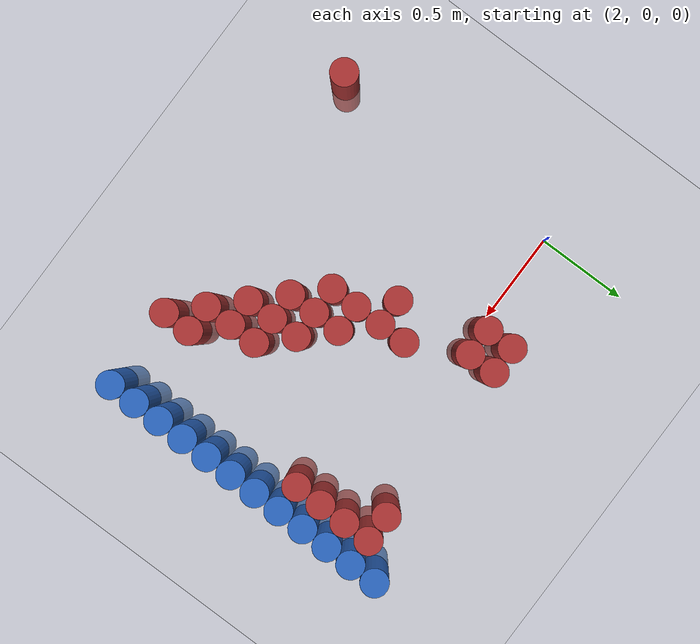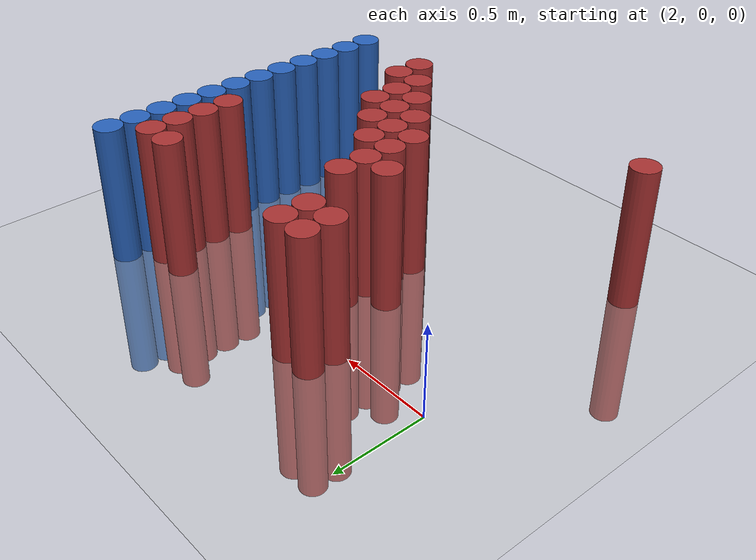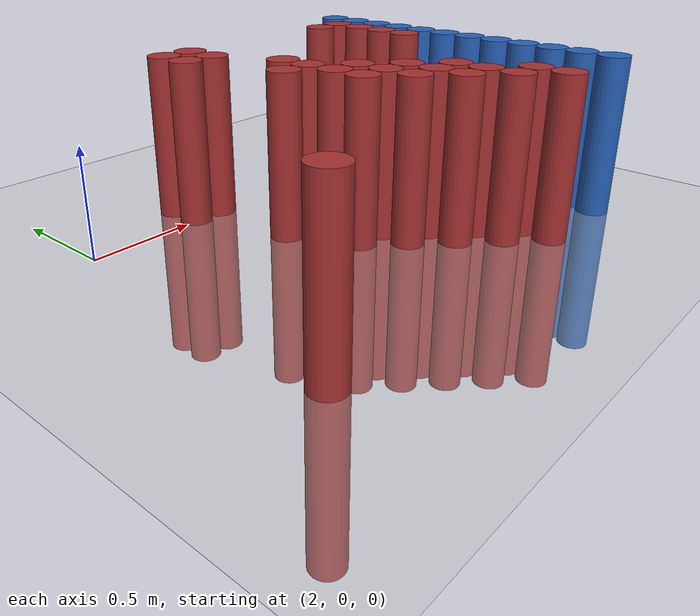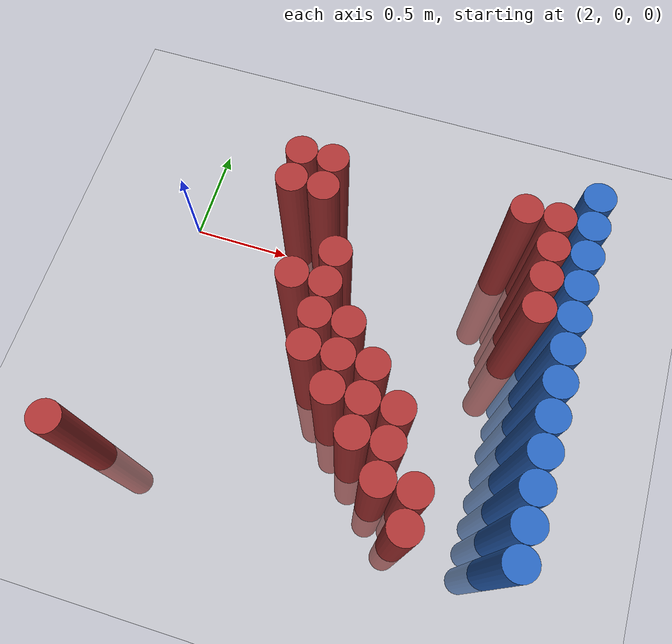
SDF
<sdf version="1.6">
 <world name="default">
  <model name="ground_plane">
   <static>1</static>
   <link name="link">
    <collision name="collision">
     <geometry><plane><normal>0 0 1</normal><size>100 100</size></plane></geometry>
     <surface><friction><ode><mu>100</mu><mu2>50</mu2></ode></friction></surface>
    </collision>
    <visual name="visual">
     <cast_shadows>0</cast_shadows>
     <geometry><plane><normal>0 0 1</normal><size>100 100</size></plane></geometry>
     <material>
      <script><uri>file://media/materials/scripts/gazebo.material</uri><name>Gazebo/Grey</name></script>
     </material>
    </visual>
   </link>
  </model>
  <model name="unit_cylinder_96">
   <static>1</static>
   <pose>3.925000 -1.325000 0.000000 0.000000 0.000000 0.000000</pose>
   <link name="link">
    <inertial>
     <mass>1</mass>
     <inertia><ixx>0.145833</ixx><ixy>0</ixy><ixz>0</ixz><iyy>0.145833</iyy><iyz>0</iyz><izz>0.125</izz></inertia>
    </inertial>
    <collision name="collision">
     <geometry><cylinder><radius>0.075000</radius><length>1.5</length></cylinder></geometry>
    </collision>
    <visual name="visual">
     <geometry><cylinder><radius>0.075000</radius><length>1.5</length></cylinder></geometry>
     <material>
      <ambient>0.152000 0.379000 0.720000 1</ambient>
      <diffuse>0.152000 0.379000 0.720000 1</diffuse>
     </material>
     <material>
      <script><name>Gazebo/Grey</name><uri>file://media/materials/scripts/gazebo.material</uri></script>
     </material>
    </visual>
   </link>
  </model>
  <model name="unit_cylinder_98">
   <static>1</static>
   <pose>3.925000 -1.175000 0.000000 0.000000 0.000000 0.000000</pose>
   <link name="link">
    <inertial>
     <mass>1</mass>
     <inertia><ixx>0.145833</ixx><ixy>0</ixy><ixz>0</ixz><iyy>0.145833</iyy><iyz>0</iyz><izz>0.125</izz></inertia>
    </inertial>
    <collision name="collision">
     <geometry><cylinder><radius>0.075000</radius><length>1.5</length></cylinder></geometry>
    </collision>
    <visual name="visual">
     <geometry><cylinder><radius>0.075000</radius><length>1.5</length></cylinder></geometry>
     <material>
      <ambient>0.152000 0.379000 0.720000 1</ambient>
      <diffuse>0.152000 0.379000 0.720000 1</diffuse>
     </material>
     <material>
      <script><name>Gazebo/Grey</name><uri>file://media/materials/scripts/gazebo.material</uri></script>
     </material>
    </visual>
   </link>
  </model>
  <model name="unit_cylinder_100">
   <static>1</static>
   <pose>3.925000 -1.025000 0.000000 0.000000 0.000000 0.000000</pose>
   <link name="link">
    <inertial>
     <mass>1</mass>
     <inertia><ixx>0.145833</ixx><ixy>0</ixy><ixz>0</ixz><iyy>0.145833</iyy><iyz>0</iyz><izz>0.125</izz></inertia>
    </inertial>
    <collision name="collision">
     <geometry><cylinder><radius>0.075000</radius><length>1.5</length></cylinder></geometry>
    </collision>
    <visual name="visual">
     <geometry><cylinder><radius>0.075000</radius><length>1.5</length></cylinder></geometry>
     <material>
      <ambient>0.152000 0.379000 0.720000 1</ambient>
      <diffuse>0.152000 0.379000 0.720000 1</diffuse>
     </material>
     <material>
      <script><name>Gazebo/Grey</name><uri>file://media/materials/scripts/gazebo.material</uri></script>
     </material>
    </visual>
   </link>
  </model>
  <model name="unit_cylinder_102">
   <static>1</static>
   <pose>3.925000 -0.875000 0.000000 0.000000 0.000000 0.000000</pose>
   <link name="link">
    <inertial>
     <mass>1</mass>
     <inertia><ixx>0.145833</ixx><ixy>0</ixy><ixz>0</ixz><iyy>0.145833</iyy><iyz>0</iyz><izz>0.125</izz></inertia>
    </inertial>
    <collision name="collision">
     <geometry><cylinder><radius>0.075000</radius><length>1.5</length></cylinder></geometry>
    </collision>
    <visual name="visual">
     <geometry><cylinder><radius>0.075000</radius><length>1.5</length></cylinder></geometry>
     <material>
      <ambient>0.152000 0.379000 0.720000 1</ambient>
      <diffuse>0.152000 0.379000 0.720000 1</diffuse>
     </material>
     <material>
      <script><name>Gazebo/Grey</name><uri>file://media/materials/scripts/gazebo.material</uri></script>
     </material>
    </visual>
   </link>
  </model>
  <model name="unit_cylinder_104">
   <static>1</static>
   <pose>3.925000 -0.725000 0.000000 0.000000 0.000000 0.000000</pose>
   <link name="link">
    <inertial>
     <mass>1</mass>
     <inertia><ixx>0.145833</ixx><ixy>0</ixy><ixz>0</ixz><iyy>0.145833</iyy><iyz>0</iyz><izz>0.125</izz></inertia>
    </inertial>
    <collision name="collision">
     <geometry><cylinder><radius>0.075000</radius><length>1.5</length></cylinder></geometry>
    </collision>
    <visual name="visual">
     <geometry><cylinder><radius>0.075000</radius><length>1.5</length></cylinder></geometry>
     <material>
      <ambient>0.152000 0.379000 0.720000 1</ambient>
      <diffuse>0.152000 0.379000 0.720000 1</diffuse>
     </material>
     <material>
      <script><name>Gazebo/Grey</name><uri>file://media/materials/scripts/gazebo.material</uri></script>
     </material>
    </visual>
   </link>
  </model>
  <model name="unit_cylinder_106">
   <static>1</static>
   <pose>3.925000 -0.575000 0.000000 0.000000 0.000000 0.000000</pose>
   <link name="link">
    <inertial>
     <mass>1</mass>
     <inertia><ixx>0.145833</ixx><ixy>0</ixy><ixz>0</ixz><iyy>0.145833</iyy><iyz>0</iyz><izz>0.125</izz></inertia>
    </inertial>
    <collision name="collision">
     <geometry><cylinder><radius>0.075000</radius><length>1.5</length></cylinder></geometry>
    </collision>
    <visual name="visual">
     <geometry><cylinder><radius>0.075000</radius><length>1.5</length></cylinder></geometry>
     <material>
      <ambient>0.152000 0.379000 0.720000 1</ambient>
      <diffuse>0.152000 0.379000 0.720000 1</diffuse>
     </material>
     <material>
      <script><name>Gazebo/Grey</name><uri>file://media/materials/scripts/gazebo.material</uri></script>
     </material>
    </visual>
   </link>
  </model>
  <model name="unit_cylinder_108">
   <static>1</static>
   <pose>3.925000 -0.425000 0.000000 0.000000 0.000000 0.000000</pose>
   <link name="link">
    <inertial>
     <mass>1</mass>
     <inertia><ixx>0.145833</ixx><ixy>0</ixy><ixz>0</ixz><iyy>0.145833</iyy><iyz>0</iyz><izz>0.125</izz></inertia>
    </inertial>
    <collision name="collision">
     <geometry><cylinder><radius>0.075000</radius><length>1.5</length></cylinder></geometry>
    </collision>
    <visual name="visual">
     <geometry><cylinder><radius>0.075000</radius><length>1.5</length></cylinder></geometry>
     <material>
      <ambient>0.152000 0.379000 0.720000 1</ambient>
      <diffuse>0.152000 0.379000 0.720000 1</diffuse>
     </material>
     <material>
      <script><name>Gazebo/Grey</name><uri>file://media/materials/scripts/gazebo.material</uri></script>
     </material>
    </visual>
   </link>
  </model>
  <model name="unit_cylinder_110">
   <static>1</static>
   <pose>3.925000 -0.275000 0.000000 0.000000 0.000000 0.000000</pose>
   <link name="link">
    <inertial>
     <mass>1</mass>
     <inertia><ixx>0.145833</ixx><ixy>0</ixy><ixz>0</ixz><iyy>0.145833</iyy><iyz>0</iyz><izz>0.125</izz></inertia>
    </inertial>
    <collision name="collision">
     <geometry><cylinder><radius>0.075000</radius><length>1.5</length></cylinder></geometry>
    </collision>
    <visual name="visual">
     <geometry><cylinder><radius>0.075000</radius><length>1.5</length></cylinder></geometry>
     <material>
      <ambient>0.152000 0.379000 0.720000 1</ambient>
      <diffuse>0.152000 0.379000 0.720000 1</diffuse>
     </material>
     <material>
      <script><name>Gazebo/Grey</name><uri>file://media/materials/scripts/gazebo.material</uri></script>
     </material>
    </visual>
   </link>
  </model>
  <model name="unit_cylinder_112">
   <static>1</static>
   <pose>3.925000 -0.125000 0.000000 0.000000 0.000000 0.000000</pose>
   <link name="link">
    <inertial>
     <mass>1</mass>
     <inertia><ixx>0.145833</ixx><ixy>0</ixy><ixz>0</ixz><iyy>0.145833</iyy><iyz>0</iyz><izz>0.125</izz></inertia>
    </inertial>
    <collision name="collision">
     <geometry><cylinder><radius>0.075000</radius><length>1.5</length></cylinder></geometry>
    </collision>
    <visual name="visual">
     <geometry><cylinder><radius>0.075000</radius><length>1.5</length></cylinder></geometry>
     <material>
      <ambient>0.152000 0.379000 0.720000 1</ambient>
      <diffuse>0.152000 0.379000 0.720000 1</diffuse>
     </material>
     <material>
      <script><name>Gazebo/Grey</name><uri>file://media/materials/scripts/gazebo.material</uri></script>
     </material>
    </visual>
   </link>
  </model>
  <model name="unit_cylinder_114">
   <static>1</static>
   <pose>3.925000 0.025000 0.000000 0.000000 0.000000 0.000000</pose>
   <link name="link">
    <inertial>
     <mass>1</mass>
     <inertia><ixx>0.145833</ixx><ixy>0</ixy><ixz>0</ixz><iyy>0.145833</iyy><iyz>0</iyz><izz>0.125</izz></inertia>
    </inertial>
    <collision name="collision">
     <geometry><cylinder><radius>0.075000</radius><length>1.5</length></cylinder></geometry>
    </collision>
    <visual name="visual">
     <geometry><cylinder><radius>0.075000</radius><length>1.5</length></cylinder></geometry>
     <material>
      <ambient>0.152000 0.379000 0.720000 1</ambient>
      <diffuse>0.152000 0.379000 0.720000 1</diffuse>
     </material>
     <material>
      <script><name>Gazebo/Grey</name><uri>file://media/materials/scripts/gazebo.material</uri></script>
     </material>
    </visual>
   </link>
  </model>
  <model name="unit_cylinder_116">
   <static>1</static>
   <pose>3.925000 0.175000 0.000000 0.000000 0.000000 0.000000</pose>
   <link name="link">
    <inertial>
     <mass>1</mass>
     <inertia><ixx>0.145833</ixx><ixy>0</ixy><ixz>0</ixz><iyy>0.145833</iyy><iyz>0</iyz><izz>0.125</izz></inertia>
    </inertial>
    <collision name="collision">
     <geometry><cylinder><radius>0.075000</radius><length>1.5</length></cylinder></geometry>
    </collision>
    <visual name="visual">
     <geometry><cylinder><radius>0.075000</radius><length>1.5</length></cylinder></geometry>
     <material>
      <ambient>0.152000 0.379000 0.720000 1</ambient>
      <diffuse>0.152000 0.379000 0.720000 1</diffuse>
     </material>
     <material>
      <script><name>Gazebo/Grey</name><uri>file://media/materials/scripts/gazebo.material</uri></script>
     </material>
    </visual>
   </link>
  </model>
  <model name="unit_cylinder_118">
   <static>1</static>
   <pose>3.925000 0.325000 0.000000 0.000000 0.000000 0.000000</pose>
   <link name="link">
    <inertial>
     <mass>1</mass>
     <inertia><ixx>0.145833</ixx><ixy>0</ixy><ixz>0</ixz><iyy>0.145833</iyy><iyz>0</iyz><izz>0.125</izz></inertia>
    </inertial>
    <collision name="collision">
     <geometry><cylinder><radius>0.075000</radius><length>1.5</length></cylinder></geometry>
    </collision>
    <visual name="visual">
     <geometry><cylinder><radius>0.075000</radius><length>1.5</length></cylinder></geometry>
     <material>
      <ambient>0.152000 0.379000 0.720000 1</ambient>
      <diffuse>0.152000 0.379000 0.720000 1</diffuse>
     </material>
     <material>
      <script><name>Gazebo/Grey</name><uri>file://media/materials/scripts/gazebo.material</uri></script>
     </material>
    </visual>
   </link>
  </model>
  <model name="unit_cylinder_337">
   <static>1</static>
   <pose>1.975000 -1.325000 0.000000 0.000000 0.000000 0.000000</pose>
   <link name="link">
    <inertial>
     <mass>1</mass>
     <inertia><ixx>0.145833</ixx><ixy>0</ixy><ixz>0</ixz><iyy>0.145833</iyy><iyz>0</iyz><izz>0.125</izz></inertia>
    </inertial>
    <collision name="collision">
     <geometry><cylinder><radius>0.075000</radius><length>1.5</length></cylinder></geometry>
    </collision>
    <visual name="visual">
     <geometry><cylinder><radius>0.075000</radius><length>1.5</length></cylinder></geometry>
     <material>
      <ambient>0.648000 0.192000 0.192000 1</ambient>
      <diffuse>0.648000 0.192000 0.192000 1</diffuse>
     </material>
     <material>
      <script><name>Gazebo/Grey</name><uri>file://media/materials/scripts/gazebo.material</uri></script>
     </material>
    </visual>
   </link>
  </model>
  <model name="unit_cylinder_341">
   <static>1</static>
   <pose>2.575000 0.025000 0.000000 0.000000 0.000000 0.000000</pose>
   <link name="link">
    <inertial>
     <mass>1</mass>
     <inertia><ixx>0.145833</ixx><ixy>0</ixy><ixz>0</ixz><iyy>0.145833</iyy><iyz>0</iyz><izz>0.125</izz></inertia>
    </inertial>
    <collision name="collision">
     <geometry><cylinder><radius>0.075000</radius><length>1.5</length></cylinder></geometry>
    </collision>
    <visual name="visual">
     <geometry><cylinder><radius>0.075000</radius><length>1.5</length></cylinder></geometry>
     <material>
      <ambient>0.648000 0.192000 0.192000 1</ambient>
      <diffuse>0.648000 0.192000 0.192000 1</diffuse>
     </material>
     <material>
      <script><name>Gazebo/Grey</name><uri>file://media/materials/scripts/gazebo.material</uri></script>
     </material>
    </visual>
   </link>
  </model>
  <model name="unit_cylinder_342">
   <static>1</static>
   <pose>2.575000 0.175000 0.000000 0.000000 0.000000 0.000000</pose>
   <link name="link">
    <inertial>
     <mass>1</mass>
     <inertia><ixx>0.145833</ixx><ixy>0</ixy><ixz>0</ixz><iyy>0.145833</iyy><iyz>0</iyz><izz>0.125</izz></inertia>
    </inertial>
    <collision name="collision">
     <geometry><cylinder><radius>0.075000</radius><length>1.5</length></cylinder></geometry>
    </collision>
    <visual name="visual">
     <geometry><cylinder><radius>0.075000</radius><length>1.5</length></cylinder></geometry>
     <material>
      <ambient>0.648000 0.192000 0.192000 1</ambient>
      <diffuse>0.648000 0.192000 0.192000 1</diffuse>
     </material>
     <material>
      <script><name>Gazebo/Grey</name><uri>file://media/materials/scripts/gazebo.material</uri></script>
     </material>
    </visual>
   </link>
  </model>
  <model name="unit_cylinder_343">
   <static>1</static>
   <pose>2.725000 -0.425000 0.000000 0.000000 0.000000 0.000000</pose>
   <link name="link">
    <inertial>
     <mass>1</mass>
     <inertia><ixx>0.145833</ixx><ixy>0</ixy><ixz>0</ixz><iyy>0.145833</iyy><iyz>0</iyz><izz>0.125</izz></inertia>
    </inertial>
    <collision name="collision">
     <geometry><cylinder><radius>0.075000</radius><length>1.5</length></cylinder></geometry>
    </collision>
    <visual name="visual">
     <geometry><cylinder><radius>0.075000</radius><length>1.5</length></cylinder></geometry>
     <material>
      <ambient>0.648000 0.192000 0.192000 1</ambient>
      <diffuse>0.648000 0.192000 0.192000 1</diffuse>
     </material>
     <material>
      <script><name>Gazebo/Grey</name><uri>file://media/materials/scripts/gazebo.material</uri></script>
     </material>
    </visual>
   </link>
  </model>
  <model name="unit_cylinder_344">
   <static>1</static>
   <pose>2.725000 0.025000 0.000000 0.000000 0.000000 0.000000</pose>
   <link name="link">
    <inertial>
     <mass>1</mass>
     <inertia><ixx>0.145833</ixx><ixy>0</ixy><ixz>0</ixz><iyy>0.145833</iyy><iyz>0</iyz><izz>0.125</izz></inertia>
    </inertial>
    <collision name="collision">
     <geometry><cylinder><radius>0.075000</radius><length>1.5</length></cylinder></geometry>
    </collision>
    <visual name="visual">
     <geometry><cylinder><radius>0.075000</radius><length>1.5</length></cylinder></geometry>
     <material>
      <ambient>0.648000 0.192000 0.192000 1</ambient>
      <diffuse>0.648000 0.192000 0.192000 1</diffuse>
     </material>
     <material>
      <script><name>Gazebo/Grey</name><uri>file://media/materials/scripts/gazebo.material</uri></script>
     </material>
    </visual>
   </link>
  </model>
  <model name="unit_cylinder_345">
   <static>1</static>
   <pose>2.725000 0.175000 0.000000 0.000000 0.000000 0.000000</pose>
   <link name="link">
    <inertial>
     <mass>1</mass>
     <inertia><ixx>0.145833</ixx><ixy>0</ixy><ixz>0</ixz><iyy>0.145833</iyy><iyz>0</iyz><izz>0.125</izz></inertia>
    </inertial>
    <collision name="collision">
     <geometry><cylinder><radius>0.075000</radius><length>1.5</length></cylinder></geometry>
    </collision>
    <visual name="visual">
     <geometry><cylinder><radius>0.075000</radius><length>1.5</length></cylinder></geometry>
     <material>
      <ambient>0.648000 0.192000 0.192000 1</ambient>
      <diffuse>0.648000 0.192000 0.192000 1</diffuse>
     </material>
     <material>
      <script><name>Gazebo/Grey</name><uri>file://media/materials/scripts/gazebo.material</uri></script>
     </material>
    </visual>
   </link>
  </model>
  <model name="unit_cylinder_347">
   <static>1</static>
   <pose>2.875000 -0.725000 0.000000 0.000000 0.000000 0.000000</pose>
   <link name="link">
    <inertial>
     <mass>1</mass>
     <inertia><ixx>0.145833</ixx><ixy>0</ixy><ixz>0</ixz><iyy>0.145833</iyy><iyz>0</iyz><izz>0.125</izz></inertia>
    </inertial>
    <collision name="collision">
     <geometry><cylinder><radius>0.075000</radius><length>1.5</length></cylinder></geometry>
    </collision>
    <visual name="visual">
     <geometry><cylinder><radius>0.075000</radius><length>1.5</length></cylinder></geometry>
     <material>
      <ambient>0.648000 0.192000 0.192000 1</ambient>
      <diffuse>0.648000 0.192000 0.192000 1</diffuse>
     </material>
     <material>
      <script><name>Gazebo/Grey</name><uri>file://media/materials/scripts/gazebo.material</uri></script>
     </material>
    </visual>
   </link>
  </model>
  <model name="unit_cylinder_348">
   <static>1</static>
   <pose>2.875000 -0.575000 0.000000 0.000000 0.000000 0.000000</pose>
   <link name="link">
    <inertial>
     <mass>1</mass>
     <inertia><ixx>0.145833</ixx><ixy>0</ixy><ixz>0</ixz><iyy>0.145833</iyy><iyz>0</iyz><izz>0.125</izz></inertia>
    </inertial>
    <collision name="collision">
     <geometry><cylinder><radius>0.075000</radius><length>1.5</length></cylinder></geometry>
    </collision>
    <visual name="visual">
     <geometry><cylinder><radius>0.075000</radius><length>1.5</length></cylinder></geometry>
     <material>
      <ambient>0.648000 0.192000 0.192000 1</ambient>
      <diffuse>0.648000 0.192000 0.192000 1</diffuse>
     </material>
     <material>
      <script><name>Gazebo/Grey</name><uri>file://media/materials/scripts/gazebo.material</uri></script>
     </material>
    </visual>
   </link>
  </model>
  <model name="unit_cylinder_349">
   <static>1</static>
   <pose>2.875000 -0.425000 0.000000 0.000000 0.000000 0.000000</pose>
   <link name="link">
    <inertial>
     <mass>1</mass>
     <inertia><ixx>0.145833</ixx><ixy>0</ixy><ixz>0</ixz><iyy>0.145833</iyy><iyz>0</iyz><izz>0.125</izz></inertia>
    </inertial>
    <collision name="collision">
     <geometry><cylinder><radius>0.075000</radius><length>1.5</length></cylinder></geometry>
    </collision>
    <visual name="visual">
     <geometry><cylinder><radius>0.075000</radius><length>1.5</length></cylinder></geometry>
     <material>
      <ambient>0.648000 0.192000 0.192000 1</ambient>
      <diffuse>0.648000 0.192000 0.192000 1</diffuse>
     </material>
     <material>
      <script><name>Gazebo/Grey</name><uri>file://media/materials/scripts/gazebo.material</uri></script>
     </material>
    </visual>
   </link>
  </model>
  <model name="unit_cylinder_350">
   <static>1</static>
   <pose>2.875000 -0.275000 0.000000 0.000000 0.000000 0.000000</pose>
   <link name="link">
    <inertial>
     <mass>1</mass>
     <inertia><ixx>0.145833</ixx><ixy>0</ixy><ixz>0</ixz><iyy>0.145833</iyy><iyz>0</iyz><izz>0.125</izz></inertia>
    </inertial>
    <collision name="collision">
     <geometry><cylinder><radius>0.075000</radius><length>1.5</length></cylinder></geometry>
    </collision>
    <visual name="visual">
     <geometry><cylinder><radius>0.075000</radius><length>1.5</length></cylinder></geometry>
     <material>
      <ambient>0.648000 0.192000 0.192000 1</ambient>
      <diffuse>0.648000 0.192000 0.192000 1</diffuse>
     </material>
     <material>
      <script><name>Gazebo/Grey</name><uri>file://media/materials/scripts/gazebo.material</uri></script>
     </material>
    </visual>
   </link>
  </model>
  <model name="unit_cylinder_353">
   <static>1</static>
   <pose>3.025000 -0.875000 0.000000 0.000000 0.000000 0.000000</pose>
   <link name="link">
    <inertial>
     <mass>1</mass>
     <inertia><ixx>0.145833</ixx><ixy>0</ixy><ixz>0</ixz><iyy>0.145833</iyy><iyz>0</iyz><izz>0.125</izz></inertia>
    </inertial>
    <collision name="collision">
     <geometry><cylinder><radius>0.075000</radius><length>1.5</length></cylinder></geometry>
    </collision>
    <visual name="visual">
     <geometry><cylinder><radius>0.075000</radius><length>1.5</length></cylinder></geometry>
     <material>
      <ambient>0.648000 0.192000 0.192000 1</ambient>
      <diffuse>0.648000 0.192000 0.192000 1</diffuse>
     </material>
     <material>
      <script><name>Gazebo/Grey</name><uri>file://media/materials/scripts/gazebo.material</uri></script>
     </material>
    </visual>
   </link>
  </model>
  <model name="unit_cylinder_354">
   <static>1</static>
   <pose>3.025000 -0.725000 0.000000 0.000000 0.000000 0.000000</pose>
   <link name="link">
    <inertial>
     <mass>1</mass>
     <inertia><ixx>0.145833</ixx><ixy>0</ixy><ixz>0</ixz><iyy>0.145833</iyy><iyz>0</iyz><izz>0.125</izz></inertia>
    </inertial>
    <collision name="collision">
     <geometry><cylinder><radius>0.075000</radius><length>1.5</length></cylinder></geometry>
    </collision>
    <visual name="visual">
     <geometry><cylinder><radius>0.075000</radius><length>1.5</length></cylinder></geometry>
     <material>
      <ambient>0.648000 0.192000 0.192000 1</ambient>
      <diffuse>0.648000 0.192000 0.192000 1</diffuse>
     </material>
     <material>
      <script><name>Gazebo/Grey</name><uri>file://media/materials/scripts/gazebo.material</uri></script>
     </material>
    </visual>
   </link>
  </model>
  <model name="unit_cylinder_355">
   <static>1</static>
   <pose>3.025000 -0.575000 0.000000 0.000000 0.000000 0.000000</pose>
   <link name="link">
    <inertial>
     <mass>1</mass>
     <inertia><ixx>0.145833</ixx><ixy>0</ixy><ixz>0</ixz><iyy>0.145833</iyy><iyz>0</iyz><izz>0.125</izz></inertia>
    </inertial>
    <collision name="collision">
     <geometry><cylinder><radius>0.075000</radius><length>1.5</length></cylinder></geometry>
    </collision>
    <visual name="visual">
     <geometry><cylinder><radius>0.075000</radius><length>1.5</length></cylinder></geometry>
     <material>
      <ambient>0.648000 0.192000 0.192000 1</ambient>
      <diffuse>0.648000 0.192000 0.192000 1</diffuse>
     </material>
     <material>
      <script><name>Gazebo/Grey</name><uri>file://media/materials/scripts/gazebo.material</uri></script>
     </material>
    </visual>
   </link>
  </model>
  <model name="unit_cylinder_357">
   <static>1</static>
   <pose>3.175000 -1.025000 0.000000 0.000000 0.000000 0.000000</pose>
   <link name="link">
    <inertial>
     <mass>1</mass>
     <inertia><ixx>0.145833</ixx><ixy>0</ixy><ixz>0</ixz><iyy>0.145833</iyy><iyz>0</iyz><izz>0.125</izz></inertia>
    </inertial>
    <collision name="collision">
     <geometry><cylinder><radius>0.075000</radius><length>1.5</length></cylinder></geometry>
    </collision>
    <visual name="visual">
     <geometry><cylinder><radius>0.075000</radius><length>1.5</length></cylinder></geometry>
     <material>
      <ambient>0.648000 0.192000 0.192000 1</ambient>
      <diffuse>0.648000 0.192000 0.192000 1</diffuse>
     </material>
     <material>
      <script><name>Gazebo/Grey</name><uri>file://media/materials/scripts/gazebo.material</uri></script>
     </material>
    </visual>
   </link>
  </model>
  <model name="unit_cylinder_358">
   <static>1</static>
   <pose>3.175000 -0.875000 0.000000 0.000000 0.000000 0.000000</pose>
   <link name="link">
    <inertial>
     <mass>1</mass>
     <inertia><ixx>0.145833</ixx><ixy>0</ixy><ixz>0</ixz><iyy>0.145833</iyy><iyz>0</iyz><izz>0.125</izz></inertia>
    </inertial>
    <collision name="collision">
     <geometry><cylinder><radius>0.075000</radius><length>1.5</length></cylinder></geometry>
    </collision>
    <visual name="visual">
     <geometry><cylinder><radius>0.075000</radius><length>1.5</length></cylinder></geometry>
     <material>
      <ambient>0.648000 0.192000 0.192000 1</ambient>
      <diffuse>0.648000 0.192000 0.192000 1</diffuse>
     </material>
     <material>
      <script><name>Gazebo/Grey</name><uri>file://media/materials/scripts/gazebo.material</uri></script>
     </material>
    </visual>
   </link>
  </model>
  <model name="unit_cylinder_359">
   <static>1</static>
   <pose>3.175000 -0.725000 0.000000 0.000000 0.000000 0.000000</pose>
   <link name="link">
    <inertial>
     <mass>1</mass>
     <inertia><ixx>0.145833</ixx><ixy>0</ixy><ixz>0</ixz><iyy>0.145833</iyy><iyz>0</iyz><izz>0.125</izz></inertia>
    </inertial>
    <collision name="collision">
     <geometry><cylinder><radius>0.075000</radius><length>1.5</length></cylinder></geometry>
    </collision>
    <visual name="visual">
     <geometry><cylinder><radius>0.075000</radius><length>1.5</length></cylinder></geometry>
     <material>
      <ambient>0.648000 0.192000 0.192000 1</ambient>
      <diffuse>0.648000 0.192000 0.192000 1</diffuse>
     </material>
     <material>
      <script><name>Gazebo/Grey</name><uri>file://media/materials/scripts/gazebo.material</uri></script>
     </material>
    </visual>
   </link>
  </model>
  <model name="unit_cylinder_360">
   <static>1</static>
   <pose>3.325000 -1.175000 0.000000 0.000000 0.000000 0.000000</pose>
   <link name="link">
    <inertial>
     <mass>1</mass>
     <inertia><ixx>0.145833</ixx><ixy>0</ixy><ixz>0</ixz><iyy>0.145833</iyy><iyz>0</iyz><izz>0.125</izz></inertia>
    </inertial>
    <collision name="collision">
     <geometry><cylinder><radius>0.075000</radius><length>1.5</length></cylinder></geometry>
    </collision>
    <visual name="visual">
     <geometry><cylinder><radius>0.075000</radius><length>1.5</length></cylinder></geometry>
     <material>
      <ambient>0.648000 0.192000 0.192000 1</ambient>
      <diffuse>0.648000 0.192000 0.192000 1</diffuse>
     </material>
     <material>
      <script><name>Gazebo/Grey</name><uri>file://media/materials/scripts/gazebo.material</uri></script>
     </material>
    </visual>
   </link>
  </model>
  <model name="unit_cylinder_361">
   <static>1</static>
   <pose>3.325000 -1.025000 0.000000 0.000000 0.000000 0.000000</pose>
   <link name="link">
    <inertial>
     <mass>1</mass>
     <inertia><ixx>0.145833</ixx><ixy>0</ixy><ixz>0</ixz><iyy>0.145833</iyy><iyz>0</iyz><izz>0.125</izz></inertia>
    </inertial>
    <collision name="collision">
     <geometry><cylinder><radius>0.075000</radius><length>1.5</length></cylinder></geometry>
    </collision>
    <visual name="visual">
     <geometry><cylinder><radius>0.075000</radius><length>1.5</length></cylinder></geometry>
     <material>
      <ambient>0.648000 0.192000 0.192000 1</ambient>
      <diffuse>0.648000 0.192000 0.192000 1</diffuse>
     </material>
     <material>
      <script><name>Gazebo/Grey</name><uri>file://media/materials/scripts/gazebo.material</uri></script>
     </material>
    </visual>
   </link>
  </model>
  <model name="unit_cylinder_362">
   <static>1</static>
   <pose>3.325000 -0.875000 0.000000 0.000000 0.000000 0.000000</pose>
   <link name="link">
    <inertial>
     <mass>1</mass>
     <inertia><ixx>0.145833</ixx><ixy>0</ixy><ixz>0</ixz><iyy>0.145833</iyy><iyz>0</iyz><izz>0.125</izz></inertia>
    </inertial>
    <collision name="collision">
     <geometry><cylinder><radius>0.075000</radius><length>1.5</length></cylinder></geometry>
    </collision>
    <visual name="visual">
     <geometry><cylinder><radius>0.075000</radius><length>1.5</length></cylinder></geometry>
     <material>
      <ambient>0.648000 0.192000 0.192000 1</ambient>
      <diffuse>0.648000 0.192000 0.192000 1</diffuse>
     </material>
     <material>
      <script><name>Gazebo/Grey</name><uri>file://media/materials/scripts/gazebo.material</uri></script>
     </material>
    </visual>
   </link>
  </model>
  <model name="unit_cylinder_363">
   <static>1</static>
   <pose>3.475000 -1.325000 0.000000 0.000000 0.000000 0.000000</pose>
   <link name="link">
    <inertial>
     <mass>1</mass>
     <inertia><ixx>0.145833</ixx><ixy>0</ixy><ixz>0</ixz><iyy>0.145833</iyy><iyz>0</iyz><izz>0.125</izz></inertia>
    </inertial>
    <collision name="collision">
     <geometry><cylinder><radius>0.075000</radius><length>1.5</length></cylinder></geometry>
    </collision>
    <visual name="visual">
     <geometry><cylinder><radius>0.075000</radius><length>1.5</length></cylinder></geometry>
     <material>
      <ambient>0.648000 0.192000 0.192000 1</ambient>
      <diffuse>0.648000 0.192000 0.192000 1</diffuse>
     </material>
     <material>
      <script><name>Gazebo/Grey</name><uri>file://media/materials/scripts/gazebo.material</uri></script>
     </material>
    </visual>
   </link>
  </model>
  <model name="unit_cylinder_364">
   <static>1</static>
   <pose>3.475000 -1.175000 0.000000 0.000000 0.000000 0.000000</pose>
   <link name="link">
    <inertial>
     <mass>1</mass>
     <inertia><ixx>0.145833</ixx><ixy>0</ixy><ixz>0</ixz><iyy>0.145833</iyy><iyz>0</iyz><izz>0.125</izz></inertia>
    </inertial>
    <collision name="collision">
     <geometry><cylinder><radius>0.075000</radius><length>1.5</length></cylinder></geometry>
    </collision>
    <visual name="visual">
     <geometry><cylinder><radius>0.075000</radius><length>1.5</length></cylinder></geometry>
     <material>
      <ambient>0.648000 0.192000 0.192000 1</ambient>
      <diffuse>0.648000 0.192000 0.192000 1</diffuse>
     </material>
     <material>
      <script><name>Gazebo/Grey</name><uri>file://media/materials/scripts/gazebo.material</uri></script>
     </material>
    </visual>
   </link>
  </model>
  <model name="unit_cylinder_365">
   <static>1</static>
   <pose>3.625000 0.175000 0.000000 0.000000 0.000000 0.000000</pose>
   <link name="link">
    <inertial>
     <mass>1</mass>
     <inertia><ixx>0.145833</ixx><ixy>0</ixy><ixz>0</ixz><iyy>0.145833</iyy><iyz>0</iyz><izz>0.125</izz></inertia>
    </inertial>
    <collision name="collision">
     <geometry><cylinder><radius>0.075000</radius><length>1.5</length></cylinder></geometry>
    </collision>
    <visual name="visual">
     <geometry><cylinder><radius>0.075000</radius><length>1.5</length></cylinder></geometry>
     <material>
      <ambient>0.648000 0.192000 0.192000 1</ambient>
      <diffuse>0.648000 0.192000 0.192000 1</diffuse>
     </material>
     <material>
      <script><name>Gazebo/Grey</name><uri>file://media/materials/scripts/gazebo.material</uri></script>
     </material>
    </visual>
   </link>
  </model>
  <model name="unit_cylinder_371">
   <static>1</static>
   <pose>3.775000 -0.275000 0.000000 0.000000 0.000000 0.000000</pose>
   <link name="link">
    <inertial>
     <mass>1</mass>
     <inertia><ixx>0.145833</ixx><ixy>0</ixy><ixz>0</ixz><iyy>0.145833</iyy><iyz>0</iyz><izz>0.125</izz></inertia>
    </inertial>
    <collision name="collision">
     <geometry><cylinder><radius>0.075000</radius><length>1.5</length></cylinder></geometry>
    </collision>
    <visual name="visual">
     <geometry><cylinder><radius>0.075000</radius><length>1.5</length></cylinder></geometry>
     <material>
      <ambient>0.648000 0.192000 0.192000 1</ambient>
      <diffuse>0.648000 0.192000 0.192000 1</diffuse>
     </material>
     <material>
      <script><name>Gazebo/Grey</name><uri>file://media/materials/scripts/gazebo.material</uri></script>
     </material>
    </visual>
   </link>
  </model>
  <model name="unit_cylinder_372">
   <static>1</static>
   <pose>3.775000 -0.125000 0.000000 0.000000 0.000000 0.000000</pose>
   <link name="link">
    <inertial>
     <mass>1</mass>
     <inertia><ixx>0.145833</ixx><ixy>0</ixy><ixz>0</ixz><iyy>0.145833</iyy><iyz>0</iyz><izz>0.125</izz></inertia>
    </inertial>
    <collision name="collision">
     <geometry><cylinder><radius>0.075000</radius><length>1.5</length></cylinder></geometry>
    </collision>
    <visual name="visual">
     <geometry><cylinder><radius>0.075000</radius><length>1.5</length></cylinder></geometry>
     <material>
      <ambient>0.648000 0.192000 0.192000 1</ambient>
      <diffuse>0.648000 0.192000 0.192000 1</diffuse>
     </material>
     <material>
      <script><name>Gazebo/Grey</name><uri>file://media/materials/scripts/gazebo.material</uri></script>
     </material>
    </visual>
   </link>
  </model>
  <model name="unit_cylinder_373">
   <static>1</static>
   <pose>3.775000 0.025000 0.000000 0.000000 0.000000 0.000000</pose>
   <link name="link">
    <inertial>
     <mass>1</mass>
     <inertia><ixx>0.145833</ixx><ixy>0</ixy><ixz>0</ixz><iyy>0.145833</iyy><iyz>0</iyz><izz>0.125</izz></inertia>
    </inertial>
    <collision name="collision">
     <geometry><cylinder><radius>0.075000</radius><length>1.5</length></cylinder></geometry>
    </collision>
    <visual name="visual">
     <geometry><cylinder><radius>0.075000</radius><length>1.5</length></cylinder></geometry>
     <material>
      <ambient>0.648000 0.192000 0.192000 1</ambient>
      <diffuse>0.648000 0.192000 0.192000 1</diffuse>
     </material>
     <material>
      <script><name>Gazebo/Grey</name><uri>file://media/materials/scripts/gazebo.material</uri></script>
     </material>
    </visual>
   </link>
  </model>
  <model name="unit_cylinder_374">
   <static>1</static>
   <pose>3.775000 0.175000 0.000000 0.000000 0.000000 0.000000</pose>
   <link name="link">
    <inertial>
     <mass>1</mass>
     <inertia><ixx>0.145833</ixx><ixy>0</ixy><ixz>0</ixz><iyy>0.145833</iyy><iyz>0</iyz><izz>0.125</izz></inertia>
    </inertial>
    <collision name="collision">
     <geometry><cylinder><radius>0.075000</radius><length>1.5</length></cylinder></geometry>
    </collision>
    <visual name="visual">
     <geometry><cylinder><radius>0.075000</radius><length>1.5</length></cylinder></geometry>
     <material>
      <ambient>0.648000 0.192000 0.192000 1</ambient>
      <diffuse>0.648000 0.192000 0.192000 1</diffuse>
     </material>
     <material>
      <script><name>Gazebo/Grey</name><uri>file://media/materials/scripts/gazebo.material</uri></script>
     </material>
    </visual>
   </link>
  </model>
  <model name="unit_cylinder_394">
   <static>1</static>
   <pose>3.925000 -1.325000 0.000000 0.000000 0.000000 0.000000</pose>
   <link name="link">
    <inertial>
     <mass>1</mass>
     <inertia><ixx>0.145833</ixx><ixy>0</ixy><ixz>0</ixz><iyy>0.145833</iyy><iyz>0</iyz><izz>0.125</izz></inertia>
    </inertial>
    <collision name="collision">
     <geometry><cylinder><radius>0.075000</radius><length>1.5</length></cylinder></geometry>
    </collision>
    <visual name="visual">
     <geometry><cylinder><radius>0.075000</radius><length>1.5</length></cylinder></geometry>
     <material>
      <ambient>0.152000 0.379000 0.720000 1</ambient>
      <diffuse>0.152000 0.379000 0.720000 1</diffuse>
     </material>
     <material>
      <script><name>Gazebo/Grey</name><uri>file://media/materials/scripts/gazebo.material</uri></script>
     </material>
    </visual>
   </link>
  </model>
  <model name="unit_cylinder_395">
   <static>1</static>
   <pose>3.925000 -1.175000 0.000000 0.000000 0.000000 0.000000</pose>
   <link name="link">
    <inertial>
     <mass>1</mass>
     <inertia><ixx>0.145833</ixx><ixy>0</ixy><ixz>0</ixz><iyy>0.145833</iyy><iyz>0</iyz><izz>0.125</izz></inertia>
    </inertial>
    <collision name="collision">
     <geometry><cylinder><radius>0.075000</radius><length>1.5</length></cylinder></geometry>
    </collision>
    <visual name="visual">
     <geometry><cylinder><radius>0.075000</radius><length>1.5</length></cylinder></geometry>
     <material>
      <ambient>0.152000 0.379000 0.720000 1</ambient>
      <diffuse>0.152000 0.379000 0.720000 1</diffuse>
     </material>
     <material>
      <script><name>Gazebo/Grey</name><uri>file://media/materials/scripts/gazebo.material</uri></script>
     </material>
    </visual>
   </link>
  </model>
  <model name="unit_cylinder_396">
   <static>1</static>
   <pose>3.925000 -1.025000 0.000000 0.000000 0.000000 0.000000</pose>
   <link name="link">
    <inertial>
     <mass>1</mass>
     <inertia><ixx>0.145833</ixx><ixy>0</ixy><ixz>0</ixz><iyy>0.145833</iyy><iyz>0</iyz><izz>0.125</izz></inertia>
    </inertial>
    <collision name="collision">
     <geometry><cylinder><radius>0.075000</radius><length>1.5</length></cylinder></geometry>
    </collision>
    <visual name="visual">
     <geometry><cylinder><radius>0.075000</radius><length>1.5</length></cylinder></geometry>
     <material>
      <ambient>0.152000 0.379000 0.720000 1</ambient>
      <diffuse>0.152000 0.379000 0.720000 1</diffuse>
     </material>
     <material>
      <script><name>Gazebo/Grey</name><uri>file://media/materials/scripts/gazebo.material</uri></script>
     </material>
    </visual>
   </link>
  </model>
  <model name="unit_cylinder_397">
   <static>1</static>
   <pose>3.925000 -0.875000 0.000000 0.000000 0.000000 0.000000</pose>
   <link name="link">
    <inertial>
     <mass>1</mass>
     <inertia><ixx>0.145833</ixx><ixy>0</ixy><ixz>0</ixz><iyy>0.145833</iyy><iyz>0</iyz><izz>0.125</izz></inertia>
    </inertial>
    <collision name="collision">
     <geometry><cylinder><radius>0.075000</radius><length>1.5</length></cylinder></geometry>
    </collision>
    <visual name="visual">
     <geometry><cylinder><radius>0.075000</radius><length>1.5</length></cylinder></geometry>
     <material>
      <ambient>0.152000 0.379000 0.720000 1</ambient>
      <diffuse>0.152000 0.379000 0.720000 1</diffuse>
     </material>
     <material>
      <script><name>Gazebo/Grey</name><uri>file://media/materials/scripts/gazebo.material</uri></script>
     </material>
    </visual>
   </link>
  </model>
  <model name="unit_cylinder_398">
   <static>1</static>
   <pose>3.925000 -0.725000 0.000000 0.000000 0.000000 0.000000</pose>
   <link name="link">
    <inertial>
     <mass>1</mass>
     <inertia><ixx>0.145833</ixx><ixy>0</ixy><ixz>0</ixz><iyy>0.145833</iyy><iyz>0</iyz><izz>0.125</izz></inertia>
    </inertial>
    <collision name="collision">
     <geometry><cylinder><radius>0.075000</radius><length>1.5</length></cylinder></geometry>
    </collision>
    <visual name="visual">
     <geometry><cylinder><radius>0.075000</radius><length>1.5</length></cylinder></geometry>
     <material>
      <ambient>0.152000 0.379000 0.720000 1</ambient>
      <diffuse>0.152000 0.379000 0.720000 1</diffuse>
     </material>
     <material>
      <script><name>Gazebo/Grey</name><uri>file://media/materials/scripts/gazebo.material</uri></script>
     </material>
    </visual>
   </link>
  </model>
  <model name="unit_cylinder_399">
   <static>1</static>
   <pose>3.925000 -0.575000 0.000000 0.000000 0.000000 0.000000</pose>
   <link name="link">
    <inertial>
     <mass>1</mass>
     <inertia><ixx>0.145833</ixx><ixy>0</ixy><ixz>0</ixz><iyy>0.145833</iyy><iyz>0</iyz><izz>0.125</izz></inertia>
    </inertial>
    <collision name="collision">
     <geometry><cylinder><radius>0.075000</radius><length>1.5</length></cylinder></geometry>
    </collision>
    <visual name="visual">
     <geometry><cylinder><radius>0.075000</radius><length>1.5</length></cylinder></geometry>
     <material>
      <ambient>0.152000 0.379000 0.720000 1</ambient>
      <diffuse>0.152000 0.379000 0.720000 1</diffuse>
     </material>
     <material>
      <script><name>Gazebo/Grey</name><uri>file://media/materials/scripts/gazebo.material</uri></script>
     </material>
    </visual>
   </link>
  </model>
  <model name="unit_cylinder_400">
   <static>1</static>
   <pose>3.925000 -0.425000 0.000000 0.000000 0.000000 0.000000</pose>
   <link name="link">
    <inertial>
     <mass>1</mass>
     <inertia><ixx>0.145833</ixx><ixy>0</ixy><ixz>0</ixz><iyy>0.145833</iyy><iyz>0</iyz><izz>0.125</izz></inertia>
    </inertial>
    <collision name="collision">
     <geometry><cylinder><radius>0.075000</radius><length>1.5</length></cylinder></geometry>
    </collision>
    <visual name="visual">
     <geometry><cylinder><radius>0.075000</radius><length>1.5</length></cylinder></geometry>
     <material>
      <ambient>0.152000 0.379000 0.720000 1</ambient>
      <diffuse>0.152000 0.379000 0.720000 1</diffuse>
     </material>
     <material>
      <script><name>Gazebo/Grey</name><uri>file://media/materials/scripts/gazebo.material</uri></script>
     </material>
    </visual>
   </link>
  </model>
  <model name="unit_cylinder_401">
   <static>1</static>
   <pose>3.925000 -0.275000 0.000000 0.000000 0.000000 0.000000</pose>
   <link name="link">
    <inertial>
     <mass>1</mass>
     <inertia><ixx>0.145833</ixx><ixy>0</ixy><ixz>0</ixz><iyy>0.145833</iyy><iyz>0</iyz><izz>0.125</izz></inertia>
    </inertial>
    <collision name="collision">
     <geometry><cylinder><radius>0.075000</radius><length>1.5</length></cylinder></geometry>
    </collision>
    <visual name="visual">
     <geometry><cylinder><radius>0.075000</radius><length>1.5</length></cylinder></geometry>
     <material>
      <ambient>0.152000 0.379000 0.720000 1</ambient>
      <diffuse>0.152000 0.379000 0.720000 1</diffuse>
     </material>
     <material>
      <script><name>Gazebo/Grey</name><uri>file://media/materials/scripts/gazebo.material</uri></script>
     </material>
    </visual>
   </link>
  </model>
  <model name="unit_cylinder_402">
   <static>1</static>
   <pose>3.925000 -0.125000 0.000000 0.000000 0.000000 0.000000</pose>
   <link name="link">
    <inertial>
     <mass>1</mass>
     <inertia><ixx>0.145833</ixx><ixy>0</ixy><ixz>0</ixz><iyy>0.145833</iyy><iyz>0</iyz><izz>0.125</izz></inertia>
    </inertial>
    <collision name="collision">
     <geometry><cylinder><radius>0.075000</radius><length>1.5</length></cylinder></geometry>
    </collision>
    <visual name="visual">
     <geometry><cylinder><radius>0.075000</radius><length>1.5</length></cylinder></geometry>
     <material>
      <ambient>0.152000 0.379000 0.720000 1</ambient>
      <diffuse>0.152000 0.379000 0.720000 1</diffuse>
     </material>
     <material>
      <script><name>Gazebo/Grey</name><uri>file://media/materials/scripts/gazebo.material</uri></script>
     </material>
    </visual>
   </link>
  </model>
  <model name="unit_cylinder_403">
   <static>1</static>
   <pose>3.925000 0.025000 0.000000 0.000000 0.000000 0.000000</pose>
   <link name="link">
    <inertial>
     <mass>1</mass>
     <inertia><ixx>0.145833</ixx><ixy>0</ixy><ixz>0</ixz><iyy>0.145833</iyy><iyz>0</iyz><izz>0.125</izz></inertia>
    </inertial>
    <collision name="collision">
     <geometry><cylinder><radius>0.075000</radius><length>1.5</length></cylinder></geometry>
    </collision>
    <visual name="visual">
     <geometry><cylinder><radius>0.075000</radius><length>1.5</length></cylinder></geometry>
     <material>
      <ambient>0.152000 0.379000 0.720000 1</ambient>
      <diffuse>0.152000 0.379000 0.720000 1</diffuse>
     </material>
     <material>
      <script><name>Gazebo/Grey</name><uri>file://media/materials/scripts/gazebo.material</uri></script>
     </material>
    </visual>
   </link>
  </model>
  <model name="unit_cylinder_404">
   <static>1</static>
   <pose>3.925000 0.175000 0.000000 0.000000 0.000000 0.000000</pose>
   <link name="link">
    <inertial>
     <mass>1</mass>
     <inertia><ixx>0.145833</ixx><ixy>0</ixy><ixz>0</ixz><iyy>0.145833</iyy><iyz>0</iyz><izz>0.125</izz></inertia>
    </inertial>
    <collision name="collision">
     <geometry><cylinder><radius>0.075000</radius><length>1.5</length></cylinder></geometry>
    </collision>
    <visual name="visual">
     <geometry><cylinder><radius>0.075000</radius><length>1.5</length></cylinder></geometry>
     <material>
      <ambient>0.152000 0.379000 0.720000 1</ambient>
      <diffuse>0.152000 0.379000 0.720000 1</diffuse>
     </material>
     <material>
      <script><name>Gazebo/Grey</name><uri>file://media/materials/scripts/gazebo.material</uri></script>
     </material>
    </visual>
   </link>
  </model>
 </world>
</sdf>
